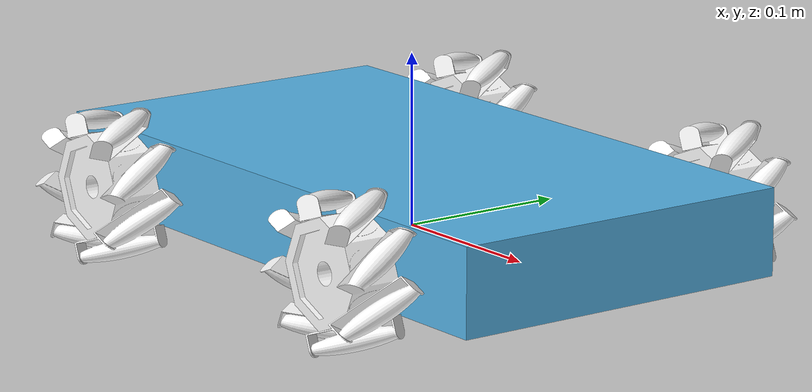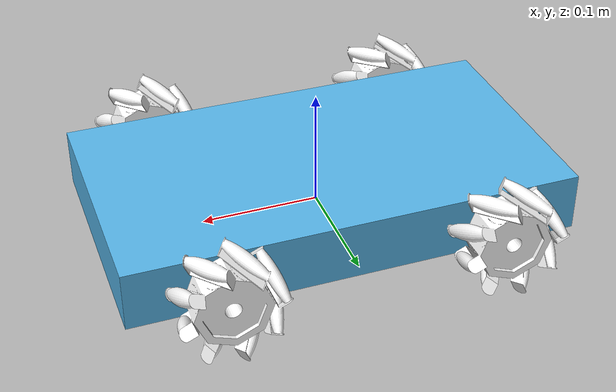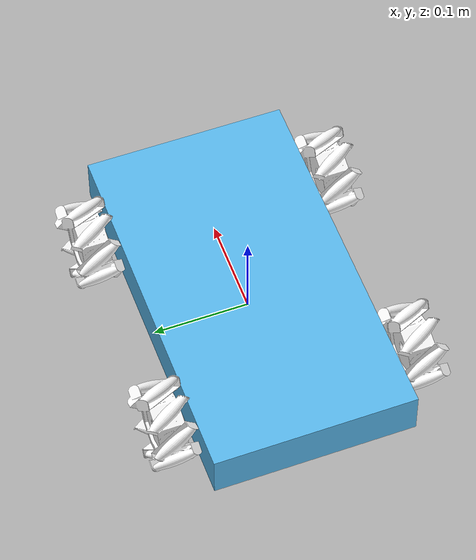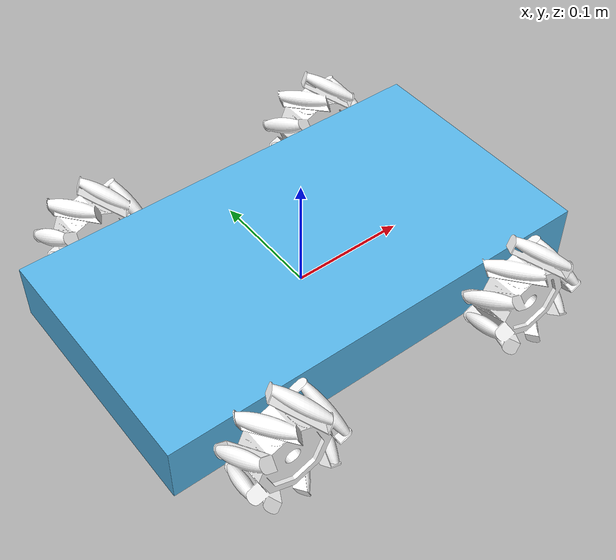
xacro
<?xml version="1.0"?>
<robot xmlns:sensor="http://playerstage.sourceforge.net/gazebo/xmlschema/#sensor"
       xmlns:controller="http://playerstage.sourceforge.net/gazebo/xmlschema/#controller"
       xmlns:interface="http://playerstage.sourceforge.net/gazebo/xmlschema/#interface"
       xmlns:xacro="http://ros.org/wiki/xacro"
       name="nexus_base" >

  <!-- The following xacro:included files set up definitions of parts of the robot body -->
  <!-- misc common stuff? -->
  <xacro:include filename="$(find nexus_robot)/urdf/common.xacro" />

  <!-- nexus base -->
  <xacro:include filename="$(find nexus_robot)/urdf/nexus_base/base.urdf.xacro" />

  <!-- controller manager -->
  <xacro:include filename="$(find nexus_robot)/controller/ros_controller.urdf.xacro" />

  <!-- materials for visualization -->
  <xacro:include filename="$(find nexus_robot)/urdf/materials.urdf.xacro" />

  <xacro:nexus_base name="base"/>

    <gazebo reference="caio">
      <material>Gazebo/Yellow</material>
    </gazebo>

</robot>

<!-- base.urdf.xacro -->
<robot xmlns:sensor="http://playerstage.sourceforge.net/gazebo/xmlschema/#sensor"
       xmlns:controller="http://playerstage.sourceforge.net/gazebo/xmlschema/#controller"
       xmlns:interface="http://playerstage.sourceforge.net/gazebo/xmlschema/#interface"
       xmlns:xacro="http://ros.org/wiki/xacro">

  <!-- sensors -->
  <xacro:include filename="$(find nexus_robot)/urdf/nexus_base/base.gazebo.xacro"/>
  <xacro:include filename="$(find nexus_robot)/urdf/nexus_base/base.transmission.xacro"/>

  <!-- simplified box collision geometry for base -->
  <xacro:property name="base_size_x" value="0.380"/>
  <xacro:property name="base_size_y" value="0.210"/>
  <xacro:property name="base_size_z" value="0.05"/>
  <xacro:property name="base_mass" value="0.005"/>

  <xacro:property name="caster_offset_x" value="0.115"/>
  <xacro:property name="caster_offset_y" value="0.13"/>
  <xacro:property name="caster_offset_z" value="0"/>
  <xacro:property name="caster_mass" value="0.001"/>
  <xacro:property name="caster_scale" value="10" />

  <xacro:property name="wheel_offset_x" value="0.0"/>
  <xacro:property name="wheel_offset_y" value="0.0"/>
  <xacro:property name="wheel_offset_z" value="0.0"/>

  <xacro:property name="wheel_mass" value="0.00004"/>
  <xacro:property name="wheel_radius" value="0.025"/>
  <xacro:property name="wheel_length" value="0.005"/>

  <xacro:property name="caster_joint_damping" value="1.0"/>
  <xacro:property name="caster_joint_friction" value="1.0"/>
  <xacro:property name="caster_joint_effort" value="30"/>
  <xacro:property name="caster_joint_velocity" value="10"/>
  <xacro:property name="caster_joint_safety_k_velocity" value="100.0"/>

  <xacro:property name="wheel_joint_damping" value="1.0"/>
  <xacro:property name="wheel_joint_friction" value="1.0"/>
  <xacro:property name="wheel_joint_effort" value="30"/>
  <xacro:property name="wheel_joint_velocity" value="10"/>
  <xacro:property name="wheel_joint_safety_k_velocity" value="100.0"/>

  <xacro:macro name="nexus_base" params="name">
    <link name="${name}_footprint">
      <collision>
        <origin xyz="0 0 ${-base_size_z / 2.0}" rpy="0 0 0"/>
        <geometry>
          <box size="0.001 0.001 0.001"/>
        </geometry>
      </collision>
    </link>
    <joint name="${name}_footprint_joint" type="fixed">
      <origin xyz="0 0 0" rpy="0 0 0"/>
      <child link="${name}_link"/>
      <parent link="${name}_footprint"/>
    </joint>

    <link name="${name}_link">
      <inertial>
        <mass value="${base_mass}"/>
        <origin xyz="0 0 0"/>
        <inertia ixx="0.0652232699207" ixy="0.009719934438" ixz="0.001293988226423" iyy="5.669473158652" iyz="0.007379583694" izz="0.01683196351726"/>
      </inertial>
      <visual name="caio">
        <origin xyz="0 0 0.02" rpy="0 0 0"/>
        <geometry>
          <box size="${base_size_x} ${base_size_y} ${base_size_z}" />
        </geometry>
      </visual>
      <collision>
        <origin xyz="0 0 0" rpy="0 0 0"/>
        <geometry>
          <box size="${base_size_x} ${base_size_y} ${base_size_z}" />
        </geometry>
      </collision>
    </link>

    <!-- front left wheel -->
    <joint name="caster_joint_fl" type="continuous">
      <origin xyz="${caster_offset_x} ${caster_offset_y} ${caster_offset_z}" rpy="0 0 0"/>
      <axis xyz="0 0 1"/>
      <limit effort="${caster_joint_effort}" velocity="${caster_joint_velocity}"/>
      <dynamics damping="${caster_joint_damping}" friction="${caster_joint_friction}"/>
      <safety_controller k_velocity="${caster_joint_safety_k_velocity}"/>
      <parent link="${name}_link"/>
      <child link="caster_link_fl"/>
    </joint>
    <link name="caster_link_fl">
      <inertial>
        <mass value="${caster_mass}"/>
        <origin xyz="0 0 0"/>
        <inertia ixx="0.012411765597" ixy="-0.000711733678" ixz="0.00050272983" iyy="0.015218160428" iyz="-0.000004273467" izz="0.011763977943"/>
      </inertial>

    </link>

    <joint name="wheel_joint_fl" type="continuous">
      <axis xyz="0 1 0"/>
      <limit effort="${wheel_joint_effort}" velocity="${wheel_joint_velocity}"/>
      <origin xyz="${wheel_offset_x} ${wheel_offset_y} ${wheel_offset_z}" rpy="0 0 0"/>
      <parent link="caster_link_fl"/>
      <dynamics damping="${wheel_joint_damping}" friction="${wheel_joint_friction}"/>
      <safety_controller k_velocity="${wheel_joint_safety_k_velocity}"/>
      <child link="wheel_link_fl"/>
    </joint>
    <link name="wheel_link_fl">
      <inertial>
        <mass value="${wheel_mass}"/>
        <origin xyz="0 0 0"/>
        <inertia ixx="0.0012411765597" ixy="-0.000711733678" ixz="0.00050272983" iyy="0.00015218160428" iyz="-0.000004273467" izz="0.011763977943"/>
      </inertial>
      <visual>
        <origin xyz="0 0 0.02" rpy="0 0 0"/>
        <geometry>
          <mesh filename="package://nexus_robot/meshes/mecanum_wheel.dae">
            <scale>${caster_scale} ${caster_scale} ${caster_scale}</scale>
          </mesh>
        </geometry>
      </visual>
      <collision>
        <origin xyz="0 0 0" rpy="${M_PI/2} 0 0"/>
        <geometry>
          <cylinder radius="${wheel_radius}" length="${wheel_radius}"/>
        </geometry>
      </collision>
    </link>

    <!-- front right wheel -->
    <joint name="caster_joint_fr" type="continuous">
      <origin xyz="${caster_offset_x} ${-caster_offset_y} ${caster_offset_z}" rpy="0 0 0"/>
      <axis xyz="0 0 1"/>
      <limit effort="${caster_joint_effort}" velocity="${caster_joint_velocity}"/>
      <dynamics damping="${caster_joint_damping}" friction="${caster_joint_friction}"/>
      <safety_controller k_velocity="${caster_joint_safety_k_velocity}"/>
      <parent link="${name}_link"/>
      <child link="caster_link_fr"/>
    </joint>
    <link name="caster_link_fr">
      <inertial>
        <mass value="${caster_mass}"/>
        <origin xyz="0 0 0"/>
        <inertia ixx="0.0012411765597" ixy="-0.000711733678" ixz="0.00050272983" iyy="0.00015218160428" iyz="-0.000004273467" izz="0.011763977943"/>
      </inertial>
    </link>

    <joint name="wheel_joint_fr" type="continuous">
      <axis xyz="0 1 0"/>
      <limit effort="${wheel_joint_effort}" velocity="${wheel_joint_velocity}"/>
      <dynamics damping="${wheel_joint_damping}" friction="${wheel_joint_friction}"/>
      <safety_controller k_velocity="${wheel_joint_safety_k_velocity}"/>
      <origin xyz="${wheel_offset_x} ${wheel_offset_y} ${wheel_offset_z}" rpy="0 0 0"/>
      <parent link="caster_link_fr"/>
      <child link="wheel_link_fr"/>
    </joint>
    <link name="wheel_link_fr">
      <inertial>
        <mass value="${wheel_mass}"/>
        <origin xyz="0 0 0"/>
        <inertia ixx="0.00012411765597" ixy="-0.000711733678" ixz="0.00050272983" iyy="0.00000015218160428" iyz="-0.000004273467" izz="0.0000011763977943"/>
      </inertial>
      <visual>
        <origin xyz="0 0 0.02" rpy="0 0 0"/>
        <geometry>
          <mesh filename="package://nexus_robot/meshes/mecanum_wheel.dae" />
          <scale>${caster_scale} ${caster_scale} ${caster_scale}</scale>
        </geometry>
      </visual>
      <collision>
        <origin xyz="0 0 0" rpy="${M_PI/2} 0 0"/>
        <geometry>
          <cylinder radius="${wheel_radius}" length="${wheel_radius}"/>
        </geometry>
      </collision>
    </link>

    <!-- back left wheel -->
    <joint name="caster_joint_bl" type="continuous">
      <origin xyz="${-caster_offset_x} ${caster_offset_y} ${caster_offset_z}" rpy="0 0 0"/>
      <axis xyz="0 0 1"/>
      <limit effort="${caster_joint_effort}" velocity="${caster_joint_velocity}"/>
      <dynamics damping="${caster_joint_damping}" friction="${caster_joint_friction}"/>
      <safety_controller k_velocity="${caster_joint_safety_k_velocity}"/>
      <parent link="${name}_link"/>
      <child link="caster_link_bl"/>
    </joint>
    <link name="caster_link_bl">
      <inertial>
        <mass value="${caster_mass}"/>
        <origin xyz="0 0 0"/>
        <inertia ixx="0.012411765597" ixy="-0.000711733678" ixz="0.00050272983" iyy="0.015218160428" iyz="-0.000004273467" izz="0.011763977943"/>
      </inertial>
    </link>

    <joint name="wheel_joint_bl" type="continuous">
      <axis xyz="0 1 0"/>
      <limit effort="10" velocity="10"/>
      <limit effort="${wheel_joint_effort}" velocity="${wheel_joint_velocity}"/>
      <dynamics damping="${wheel_joint_damping}" friction="${wheel_joint_friction}"/>
      <safety_controller k_velocity="${wheel_joint_safety_k_velocity}"/>
      <origin xyz="${wheel_offset_x} ${wheel_offset_y} ${wheel_offset_z}" rpy="0 0 0"/>
      <parent link="caster_link_bl"/>
      <child link="wheel_link_bl"/>
    </joint>
    <link name="wheel_link_bl">
      <inertial>
        <mass value="${wheel_mass}"/>
        <origin xyz="0 0 0"/>
        <inertia ixx="0.012411765597" ixy="-0.000711733678" ixz="0.00050272983" iyy="0.015218160428" iyz="-0.000004273467" izz="0.011763977943"/>
      </inertial>
      <visual>
        <origin xyz="0 0 0.02" rpy="0 0 0"/>
        <geometry>
          <mesh filename="package://nexus_robot/meshes/mecanum_wheel.dae" />
          <scale>${caster_scale} ${caster_scale} ${caster_scale}</scale>
        </geometry>
      </visual>
      <collision>
        <origin xyz="0 0 0" rpy="${M_PI/2} 0 0"/>
        <geometry>
          <cylinder radius="${wheel_radius}" length="${wheel_radius}"/>
        </geometry>
      </collision>
    </link>

    <!-- back right wheel -->
    <joint name="caster_joint_br" type="continuous">
      <origin xyz="${-caster_offset_x} ${-caster_offset_y} ${caster_offset_z}" rpy="0 0 0"/>
      <axis xyz="0 0 1"/>
      <limit effort="${caster_joint_effort}" velocity="${caster_joint_velocity}"/>
      <dynamics damping="${caster_joint_damping}" friction="${caster_joint_friction}"/>
      <safety_controller k_velocity="${caster_joint_safety_k_velocity}"/>
      <parent link="${name}_link"/>
      <child link="caster_link_br"/>
    </joint>
    <link name="caster_link_br">
      <inertial>
        <mass value="${caster_mass}"/>
        <origin xyz="0 0 0"/>
        <inertia ixx="0.012411765597" ixy="-0.000711733678" ixz="0.00050272983" iyy="0.015218160428" iyz="-0.000004273467" izz="0.011763977943"/>
      </inertial>
    </link>

    <joint name="wheel_joint_br" type="continuous">
      <axis xyz="0 1 0"/>
      <limit effort="${wheel_joint_effort}" velocity="${wheel_joint_velocity}"/>
      <dynamics damping="${wheel_joint_damping}" friction="${wheel_joint_friction}"/>
      <safety_controller k_velocity="${wheel_joint_safety_k_velocity}"/>
      <origin xyz="${wheel_offset_x} ${wheel_offset_y} ${wheel_offset_z}" rpy="0 0 0"/>
      <parent link="caster_link_br"/>
      <child link="wheel_link_br"/>
    </joint>
    <link name="wheel_link_br">
      <inertial>
        <mass value="${wheel_mass}"/>
        <origin xyz="0 0 0"/>
        <inertia ixx="0.012411765597" ixy="-0.000711733678" ixz="0.00050272983" iyy="0.015218160428" iyz="-0.000004273467" izz="0.011763977943"/>
      </inertial>
      <visual>
        <origin xyz="0 0 0.02" rpy="0 0 0"/>
        <geometry>
          <mesh filename="package://nexus_robot/meshes/mecanum_wheel.dae" />
          <scale>${caster_scale} ${caster_scale} ${caster_scale}</scale>
        </geometry>
      </visual>
      <collision>
        <origin xyz="0 0 0" rpy="${M_PI/2} 0 0"/>
        <geometry>
          <cylinder radius="${wheel_radius}" length="${wheel_radius}"/>
        </geometry>
      </collision>
    </link>

    <!-- extensions -->
    <xacro:nexus_base_gazebo/>
    <xacro:nexus_base_transmission/>

  </xacro:macro>
</robot>

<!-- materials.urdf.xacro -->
<robot>
  <material name="Orange">
    <color rgba="1.0 0.4 0.0 1.0"/>
  </material>
  <material name="NexusYellow">
    <color rgba="0.78 0.62  0.04"/>
  </material>
  <material name="Grey">
    <color rgba="0.7 0.7 0.7 1.0"/>
  </material>
  <material name="DarkGrey">
    <color rgba="0.3 0.3 0.3 1.0"/>
  </material>
  <material name="White">
    <color rgba="1.0 1.0 1.0 1.0"/>
  </material>
  <material name="Black">
    <color rgba="0.0 0.0 0.0 1.0"/>
  </material>
  <material name="Red">
    <color rgba="1.0 0.0 0.0 1.0"/>
  </material>
  <material name="Green">
    <color rgba="0.0 1.0 0.0 1.0"/>
  </material>
  <material name="Blue">
    <color rgba="0.0 0.0 0.8 1.0"/>
  </material>
  <material name="LightGrey">
    <color rgba="0.82 0.82 0.82 1.0"/>
  </material>
</robot>
